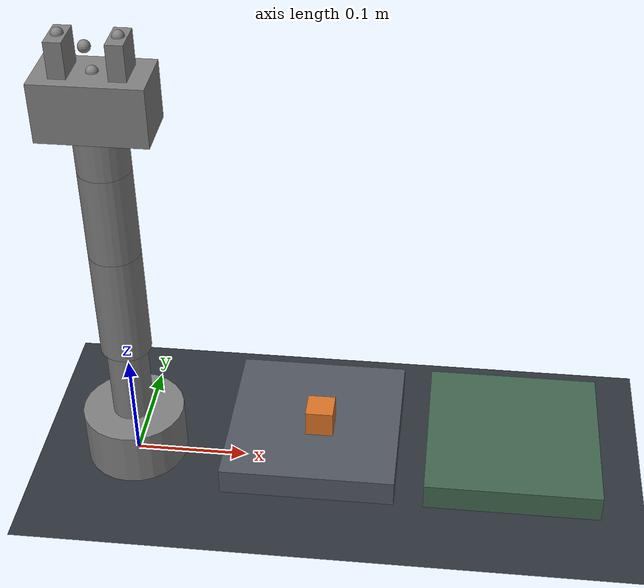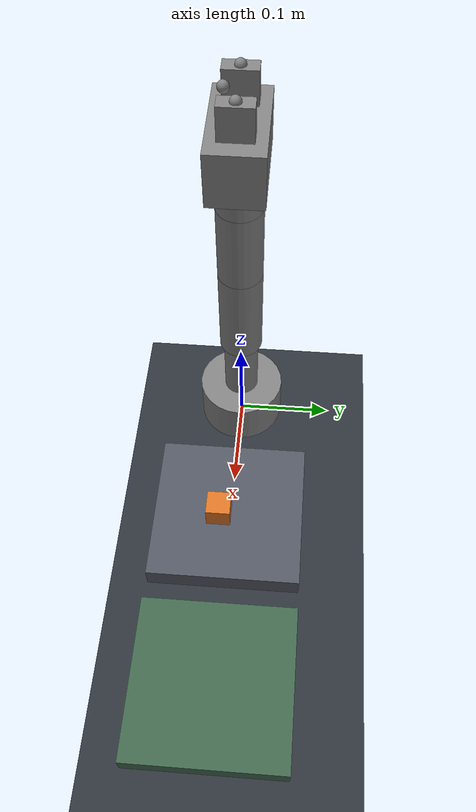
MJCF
<mujoco model="benchmark-world">
  <compiler angle="radian"/>

  <option tolerance="1e-10" integrator="implicitfast" jacobian="dense"/>

  <visual>
    <headlight ambient="0 0 0" diffuse="0 0 0" specular="0 0 0"/>
  </visual>

  <statistic extent="3" center="0 0 0"/>

  <default>
    <default class="robot/main"/>
  </default>

  <worldbody>
    <geom name="world/floor" size="3 3 0.1" type="plane" rgba="0.18 0.2 0.23 1"/>
    <camera name="world/camera" pos="1.8 -2.5 1.8" quat="0.803956 0.50933 0.164287 0.259321" fovy="50"/>
    <light name="world/key" pos="0 -1 3" dir="0 0 -1" type="directional" ambient="0.3 0.3 0.3" diffuse="0.8 0.8 0.8" specular="0.1 0.1 0.1"/>
    <body name="world/bench" pos="0.165 0 0.038">
      <geom name="world/bench_geom" size="0.075 0.075 0.012" type="box" condim="4" priority="1" friction="1 0.03 0.001" solref="0.004" solimp="0.95 0.99" rgba="0.32 0.34 0.38 1"/>
    </body>
    <body name="world/cube" pos="0.170478 -0.00920853 0.062">
      <joint name="world/cube_free" type="free"/>
      <geom name="world/cube_geom" size="0.012 0.012 0.012" type="box" condim="4" priority="1" friction="1.57543 0.03 0.001" solref="0.004" solimp="0.95 0.99" mass="0.014519" rgba="0.85 0.45 0.15 1"/>
    </body>
    <body name="world/destination" pos="0.34 0 0.038">
      <geom name="world/destination_geom" size="0.075 0.075 0.012" type="box" condim="4" priority="1" friction="1 0.03 0.001" solref="0.004" solimp="0.95 0.99" rgba="0.25 0.4 0.3 1"/>
    </body>
    <body name="robot/base">
      <inertial pos="0 0 0.025" quat="0.5 0.5 -0.5 0.5" mass="0.9" diaginertia="0.00091125 0.00064313 0.00064313"/>
      <geom size="0.045 0.025" pos="0 0 0.025" type="cylinder"/>
      <site name="robot/robot_base" pos="0 0 0"/>
      <body name="robot/link_0" pos="0 0 0.05">
        <inertial pos="0 0 0.035" mass="0.25" diaginertia="0.00012233 0.00012233 4.05e-05"/>
        <joint name="robot/joint_0" pos="0 0 0" axis="0 0 1" range="-2.85 2.85" actuatorfrcrange="-14 14"/>
        <geom size="0.018 0.035" pos="0 0 0.035" type="cylinder"/>
        <body name="robot/link_1" pos="0 0 0.07">
          <inertial pos="0 0 0.05" mass="0.25" diaginertia="0.00023858 0.00023858 6.05e-05"/>
          <joint name="robot/joint_1" pos="0 0 0" axis="0 1 0" range="-2.85 2.85" actuatorfrcrange="-14 14"/>
          <geom size="0.022 0.05" pos="0 0 0.05" type="cylinder"/>
          <body name="robot/link_2" pos="0 0 0.1">
            <inertial pos="0 0 0.04" mass="0.25" diaginertia="0.00016358 0.00016358 6.05e-05"/>
            <joint name="robot/joint_2" pos="0 0 0" axis="0 1 0" range="-2.85 2.85" actuatorfrcrange="-14 14"/>
            <geom size="0.022 0.04" pos="0 0 0.04" type="cylinder"/>
            <body name="robot/link_3" pos="0 0 0.08">
              <inertial pos="0 0 0.0175" quat="0.5 0.5 -0.5 0.5" mass="0.25" diaginertia="6.05e-05 5.577e-05 5.577e-05"/>
              <joint name="robot/joint_3" pos="0 0 0" axis="0 1 0" range="-2.85 2.85" actuatorfrcrange="-14 14"/>
              <geom size="0.022 0.0175" pos="0 0 0.0175" type="cylinder"/>
              <body name="robot/palm" pos="0 0 0.035">
                <inertial pos="0 0 0.025" quat="0.5 0.5 0.5 0.5" mass="0.35" diaginertia="0.00030917 0.00030917 0.00014583"/>
                <geom size="0.045 0.025 0.025" pos="0 0 0.025" type="box"/>
                <site name="robot/palm_grasp_point" pos="0 -0.0115 0.0765"/>
                <site name="robot/palm_grasp_center" pos="0 0 0.05"/>
                <site name="robot/palm_wrist" pos="0 0 0"/>
                <body name="robot/finger_left" pos="0.023 0 0.05">
                  <inertial pos="0 0 0.015" mass="0.06" diaginertia="9e-06 5.48e-06 5.48e-06"/>
                  <joint name="robot/grip_left" pos="0 0 0" axis="-1 0 0" type="slide" range="0 0.015" actuatorfrcrange="-8 8"/>
                  <geom size="0.007 0.015 0.015" pos="0 0 0.015" type="box"/>
                  <site name="robot/palm_tip" pos="0 0 0.03"/>
                  <site name="robot/palm_contact_0" pos="0 0 0.03"/>
                </body>
                <body name="robot/finger_right" pos="-0.023 0 0.05">
                  <inertial pos="0 0 0.015" mass="0.06" diaginertia="9e-06 5.48e-06 5.48e-06"/>
                  <joint name="robot/grip_right" pos="0 0 0" axis="1 0 0" type="slide" range="0 0.015" actuatorfrcrange="-8 8"/>
                  <geom size="0.007 0.015 0.015" pos="0 0 0.015" type="box"/>
                  <site name="robot/palm_contact_1" pos="0 0 0.03"/>
                </body>
              </body>
            </body>
          </body>
        </body>
      </body>
    </body>
  </worldbody>

  <actuator>
    <general name="robot/joint_0_motor" joint="robot/joint_0" ctrllimited="true" ctrlrange="-14 14" forcelimited="true" forcerange="-14 14"/>
    <general name="robot/joint_1_motor" joint="robot/joint_1" ctrllimited="true" ctrlrange="-14 14" forcelimited="true" forcerange="-14 14"/>
    <general name="robot/joint_2_motor" joint="robot/joint_2" ctrllimited="true" ctrlrange="-14 14" forcelimited="true" forcerange="-14 14"/>
    <general name="robot/joint_3_motor" joint="robot/joint_3" ctrllimited="true" ctrlrange="-14 14" forcelimited="true" forcerange="-14 14"/>
    <general name="robot/grip_left_motor" joint="robot/grip_left" ctrllimited="true" ctrlrange="-8 8" forcelimited="true" forcerange="-8 8"/>
    <general name="robot/grip_right_motor" joint="robot/grip_right" ctrllimited="true" ctrlrange="-8 8" forcelimited="true" forcerange="-8 8"/>
  </actuator>
</mujoco>
